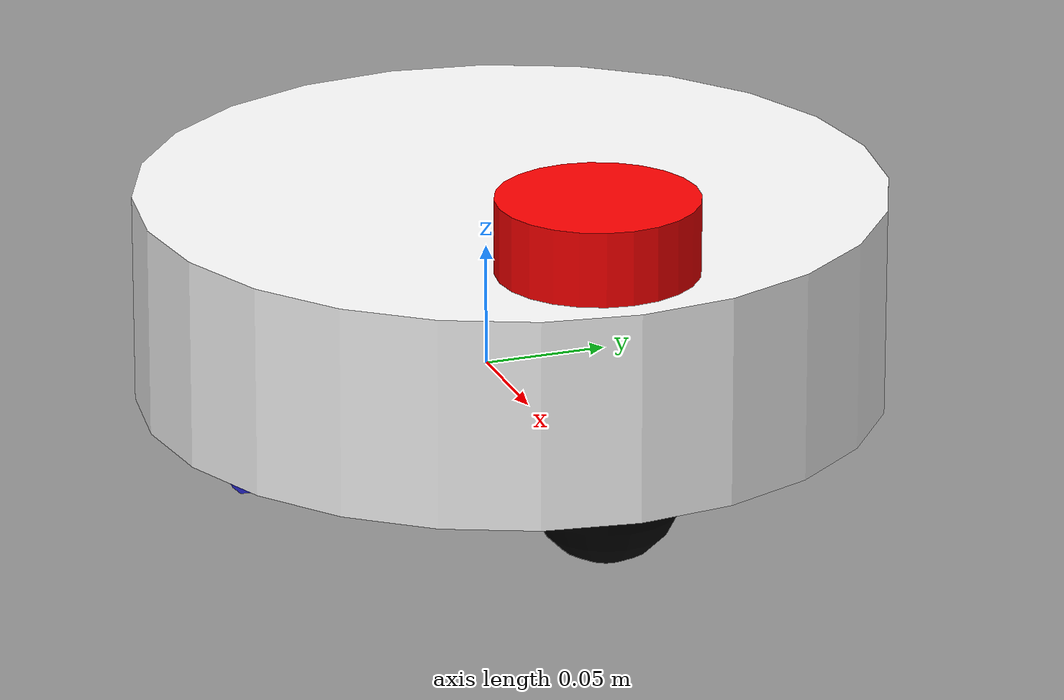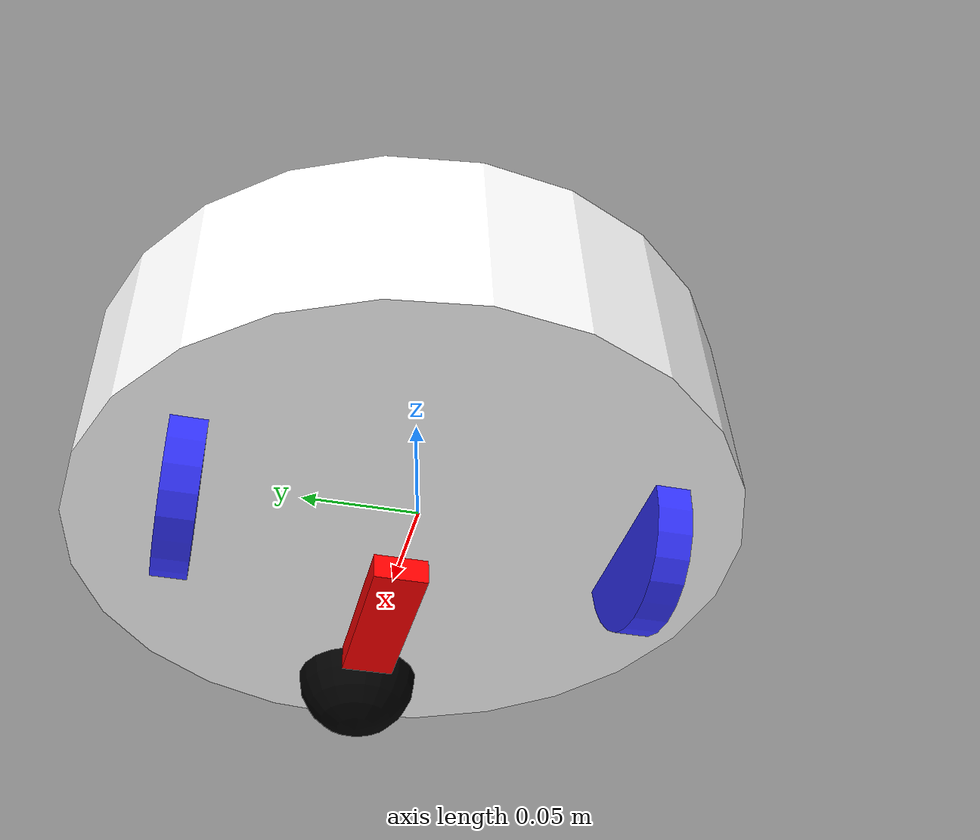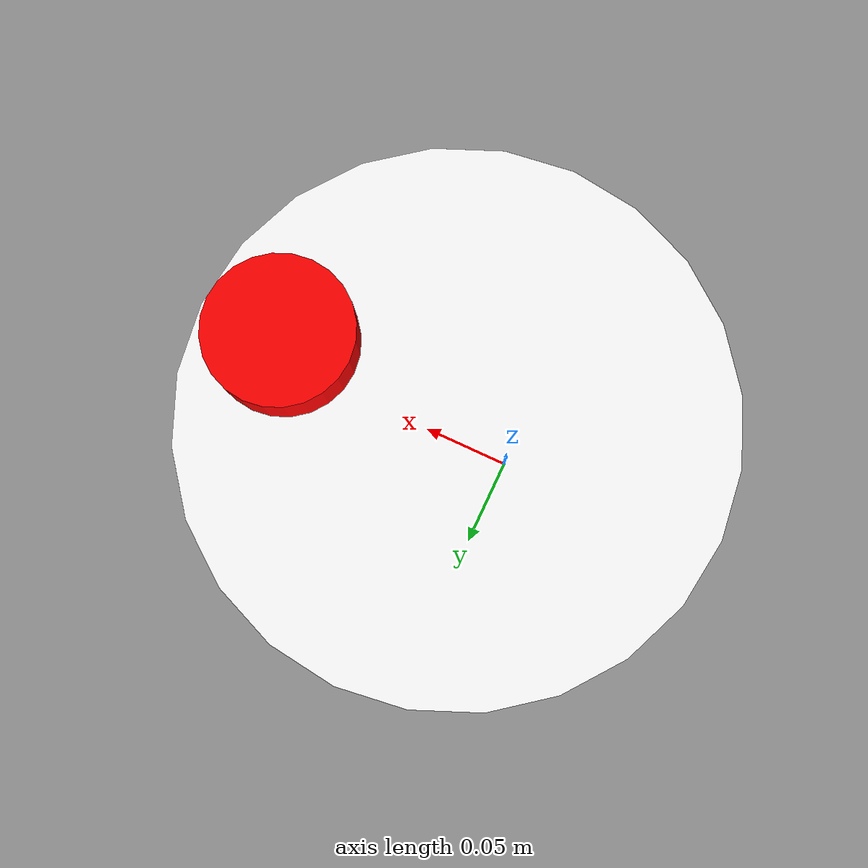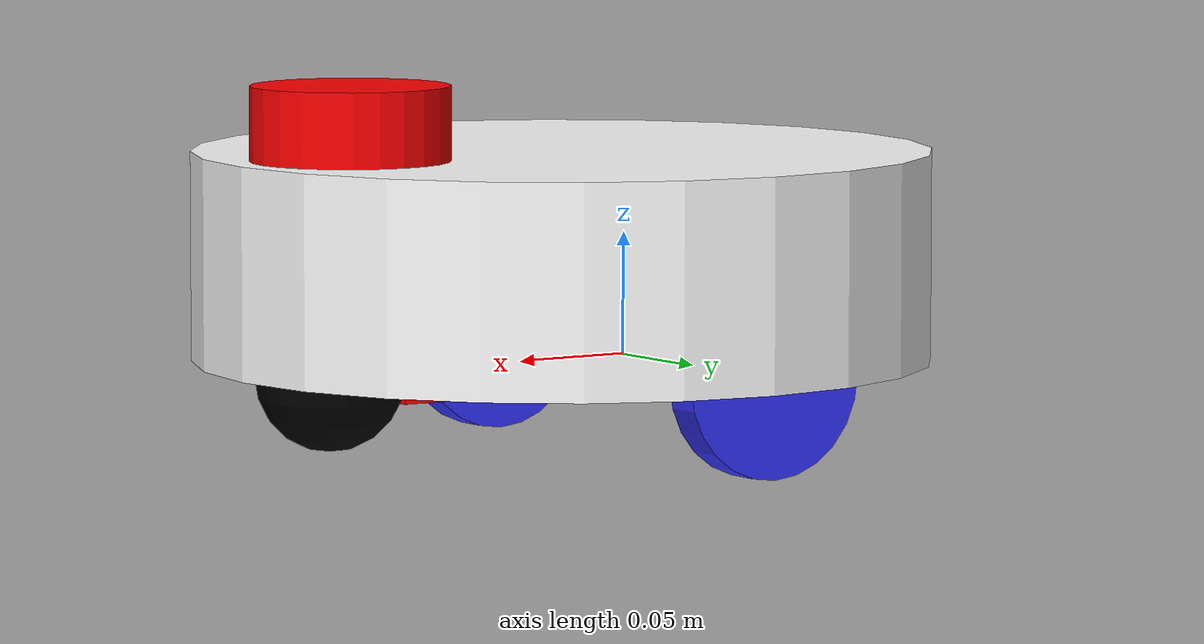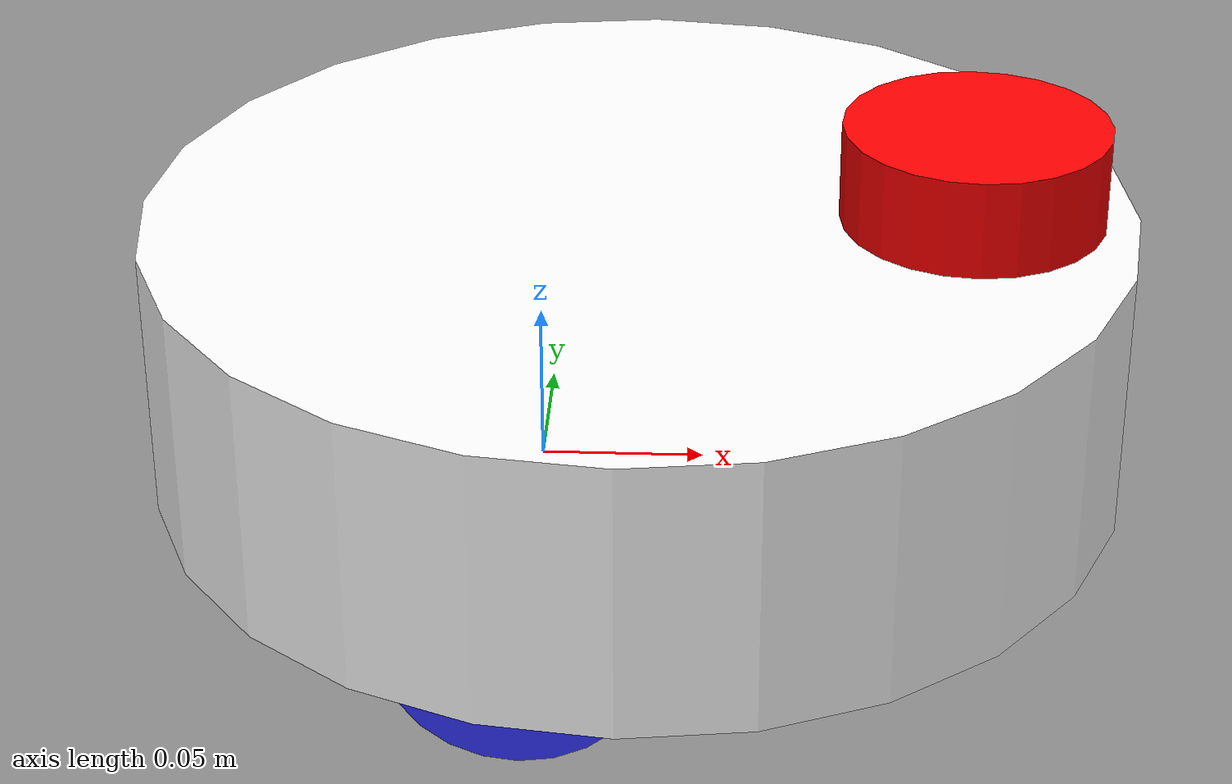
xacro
<?xml version="1.0"?>
<robot xmlns:xacro="http://www.ros.org/wiki/xacro"  name="robot">

    <xacro:arg name="use_ros2_control" default="true"/>
    <xacro:arg name="sim_mode" default="false"/>

    <xacro:include filename="robot_core.xacro" />

    <xacro:if value="$(arg use_ros2_control)">
        <xacro:include filename="ros2_control.xacro" />
    </xacro:if>
    <xacro:unless value="$(arg use_ros2_control)">
        <xacro:include filename="gazebo_control.xacro" />
    </xacro:unless>
    <xacro:include filename="lidar.xacro" />
    <xacro:include filename="camera.xacro" />

</robot>

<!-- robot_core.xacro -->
<robot xmlns:xacro="http://www.ros.org/wiki/xacro"  >

 <xacro:include filename="inertial_macros.xacro"/>

  <material name="white">
    <color rgba="1 1 1 1"/>
  </material>

  <material name="orange">
    <color rgba="1.0 0.4 0.0 1.0"/>
  </material>

 <material name="blue">
    <color rgba= "0.2 0.2 1 1"/>
 </material>

 <material name="black">
        <color rgba="0 0 0 1"/>
 </material>

 <material name="red">
        <color rgba="1 0 0 1"/>
 </material>

  <!-- BASE LINK-->

<link name="base_link">
  </link>

  <!-- BASE_FOOTPRINT LINK -->

    <joint name="base_footprint_joint" type="fixed">
        <parent link="base_link"/>
        <child link="base_footprint"/>
        <origin xyz="0 0 0" rpy="0 0 0"/>
    </joint>

    <link name="base_footprint">
    </link>

     <!-- CHASSISS LINK-->

<joint name= "chassis_joint" type="fixed">
    <parent link="base_link"/>
    <child link="chassis"/>
    <origin  xyz="0.03 0 0" />
</joint>

<link name="chassis">
    <visual>
     <origin xyz="0.0 0 0.0425"/>
      <geometry>
        <cylinder length="0.085" radius="0.150"/>
      </geometry>
      <material name="white"/>
    </visual>

    <collision>
     <origin xyz="0.0 0 0.0425"/>
      <geometry>
        <cylinder length="0.085" radius="0.150"/>
      </geometry>
    </collision>
    <xacro:inertial_cylinder mass="0.5" length="0.085" radius="0.150">
            <origin xyz="0 0 0.0425" rpy="0 0 0"/>
        </xacro:inertial_cylinder>
    </link>

    <gazebo reference="chassis">
        <material>Gazebo/White</material>
    </gazebo>
     <!-- LEFT WHEEL LINK-->

     <joint name="left_wheel_joint" type="continuous">
            <parent link="base_link"/>
            <child link="left_wheel"/>
            <origin xyz="0 0.1 0" rpy="-${pi/2} 0 0"/>
            <axis xyz="0 0 1"/>
     </joint>

     <link name="left_wheel">
      <visual>
       <geometry>
        <cylinder length="0.015" radius="0.04"/>
       </geometry>
      <material name="blue"/>
      </visual>

      <collision>
       <geometry>
        <cylinder length="0.015" radius="0.04"/>
       </geometry>

      </collision>

       <xacro:inertial_cylinder mass="0.1" length="0.015" radius="0.04">
            <origin xyz="0 0 0" rpy="0 0 0"/>
        </xacro:inertial_cylinder>

     </link>

         <gazebo reference="left_wheel">
            <material>Gazebo/Blue</material>
         </gazebo>
<!-- right WHEEL LINK-->

     <joint name="right_wheel_joint" type="continuous">
            <parent link="base_link"/>
            <child link="right_wheel"/>
            <origin xyz="0 -0.1 0" rpy="${pi/2} 0 0"/>
            <axis xyz="0 0 -1"/>
     </joint>

     <link name="right_wheel">
      <visual>
       <geometry>
        <cylinder length="0.015" radius="0.04"/>
       </geometry>
      <material name="blue"/>
      </visual>

      <collision>
       <geometry>
        <cylinder length="0.015" radius="0.04"/>
       </geometry>
      </collision>
       <xacro:inertial_cylinder mass="0.1" length="0.015" radius="0.04">
            <origin xyz="0 0 0" rpy="0 0 0"/>
        </xacro:inertial_cylinder>

     </link>

      <gazebo reference="right_wheel">
        <material>Gazebo/Blue</material>
     </gazebo>

        <!-- CASTER WHEEL LINK -->

    <joint name="caster_wheel_joint" type="fixed">
        <parent link="chassis"/>
        <child link="caster_wheel"/>
        <origin xyz="0.11 0 0"/>
    </joint>

    <link name="caster_wheel">
        <visual>
            <geometry>
                <sphere radius="0.03"/>
            </geometry>
            <material name="black"/>
        </visual>
        <collision>
            <geometry>
                <sphere radius="0.03"/>
            </geometry>
        </collision>
        <xacro:inertial_sphere mass="0.1" radius="0.03">
            <origin xyz="0 0 0" rpy="0 0 0"/>
        </xacro:inertial_sphere>
    </link>

      <gazebo reference="caster_wheel">
        <material>Gazebo/Black</material>
        <mu1 value="0.001" />
        <mu2 value="0.001" />

      </gazebo>

</robot>

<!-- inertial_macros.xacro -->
<robot xmlns:xacro="http://www.ros.org/wiki/xacro" >

    <!-- Specify some standard inertial calculations https://en.wikipedia.org/wiki/List_of_moments_of_inertia -->
    <!-- These make use of xacro's mathematical functionality -->

    <xacro:macro name="inertial_sphere" params="mass radius *origin">
        <inertial>
            <xacro:insert_block name="origin"/>
            <mass value="${mass}" />
            <inertia ixx="${(2/5) * mass * (radius*radius)}" ixy="0.0" ixz="0.0"
                    iyy="${(2/5) * mass * (radius*radius)}" iyz="0.0"
                    izz="${(2/5) * mass * (radius*radius)}" />
        </inertial>
    </xacro:macro>

    <xacro:macro name="inertial_box" params="mass x y z *origin">
        <inertial>
            <xacro:insert_block name="origin"/>
            <mass value="${mass}" />
            <inertia ixx="${(1/12) * mass * (y*y+z*z)}" ixy="0.0" ixz="0.0"
                    iyy="${(1/12) * mass * (x*x+z*z)}" iyz="0.0"
                    izz="${(1/12) * mass * (x*x+y*y)}" />
        </inertial>
    </xacro:macro>

    <xacro:macro name="inertial_cylinder" params="mass length radius *origin">
        <inertial>
            <xacro:insert_block name="origin"/>
            <mass value="${mass}" />
            <inertia ixx="${(1/12) * mass * (3*radius*radius + length*length)}" ixy="0.0" ixz="0.0"
                    iyy="${(1/12) * mass * (3*radius*radius + length*length)}" iyz="0.0"
                    izz="${(1/2) * mass * (radius*radius)}" />
        </inertial>
    </xacro:macro>

    </robot>

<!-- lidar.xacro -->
<robot xmlns:xacro="http://www.ros.org/wiki/xacro"  >

   <joint name="laser_joint" type= "fixed">
        <parent link="chassis"/>
        <child link ="laser_frame"/>
        <origin xyz="0.1 0 0.09"  rpy="0 0 0" />
    </joint>

<link name="laser_frame">

    <visual>

      <geometry>
        <cylinder length="0.05" radius="0.04"/>
      </geometry>
      <material name="red"/>
    </visual>

    <collision>

      <geometry>
        <cylinder length="0.05" radius="0.04"/>
      </geometry>
    </collision>
    <xacro:inertial_cylinder mass="0.5" length="0.05" radius="0.04">
            <origin xyz="0 0 0" rpy="0 0 0"/>

        </xacro:inertial_cylinder>

</link>

   <gazebo reference="laser_frame">
        <material>Gazebo/Red</material>

        <sensor name="laser" type="ray">
            <pose> 0 0 0 0 0 0 </pose>
            <visualize>false</visualize>
            <update_rate>10</update_rate>
            <ray>
                <scan>
                    <horizontal>
                        <samples>360</samples>
                        <min_angle>-3.14</min_angle>
                        <max_angle>3.14</max_angle>
                    </horizontal>
                </scan>
                <range>
                    <min>0.3</min>
                    <max>12</max>
                </range>
            </ray>
            <plugin name="laser_controller" filename="libgazebo_ros_ray_sensor.so">
                <ros>
                    <argument>~/out:=scan</argument>
                </ros>
                <output_type>sensor_msgs/LaserScan</output_type>
                <frame_name>laser_frame</frame_name>
            </plugin>
        </sensor>
    </gazebo>

</robot>

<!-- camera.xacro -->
<robot xmlns:xacro="http://www.ros.org/wiki/xacro"  >

    <joint name="camera_joint" type="fixed">
        <parent link="chassis"/>
        <child link="camera_link"/>
        <origin xyz="0.0425 0 0" rpy="0 0 0"/>
    </joint>

    <link name="camera_link">
        <visual>
            <geometry>
                <box size="0.08 0.025 0.024"/>
            </geometry>
            <material name="red"/>
        </visual>
    </link>

    <joint name="camera_optical_joint" type="fixed">
        <parent link="camera_link"/>
        <child link="camera_link_optical"/>
        <origin xyz="0 0 0" rpy="${-pi/2} 0 ${-pi/2}"/>
    </joint>

    <link name="camera_link_optical"></link>

     <gazebo reference="camera_link">
        <material>Gazebo/Red</material>

     <sensor name="camera" type="camera_">
            <pose> 0 0 0 0 0 0 </pose>
            <visualize>true</visualize>
            <update_rate>10</update_rate>

            <plugin name="camera_controller" filename="libgazebo_ros_camera_sensor.so">
                <ros>
                    <argument>~/out:=scan</argument>
                </ros>
                <frame_name>camera_link_optical</frame_name>
            </plugin>
        </sensor>

    </gazebo>

</robot>
